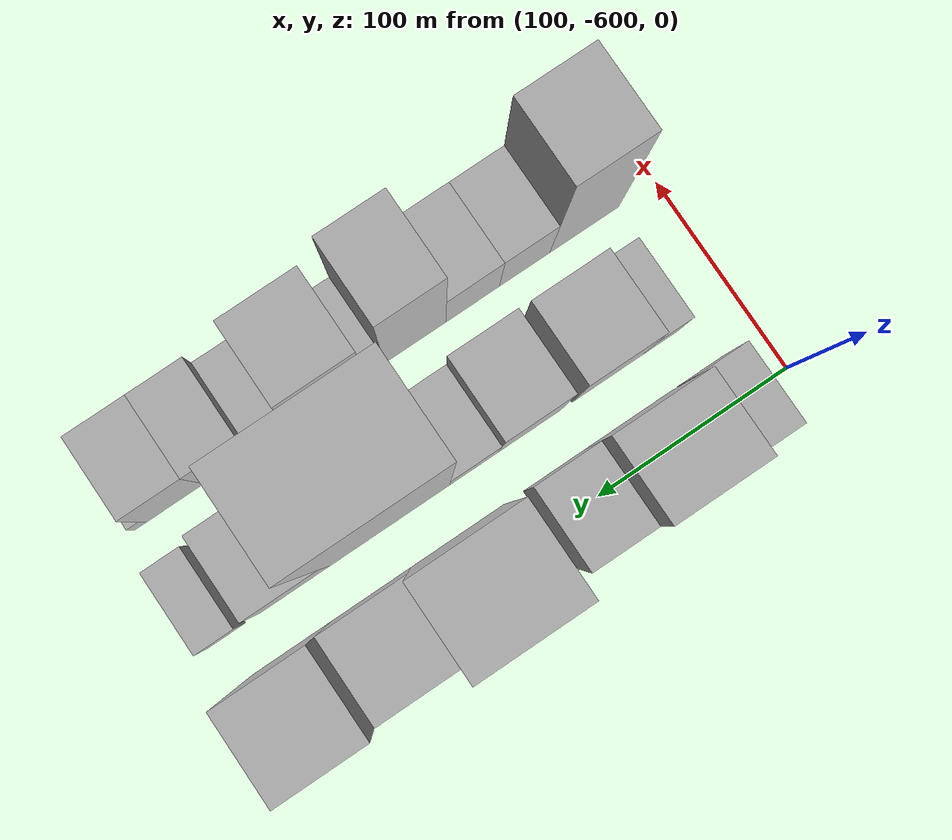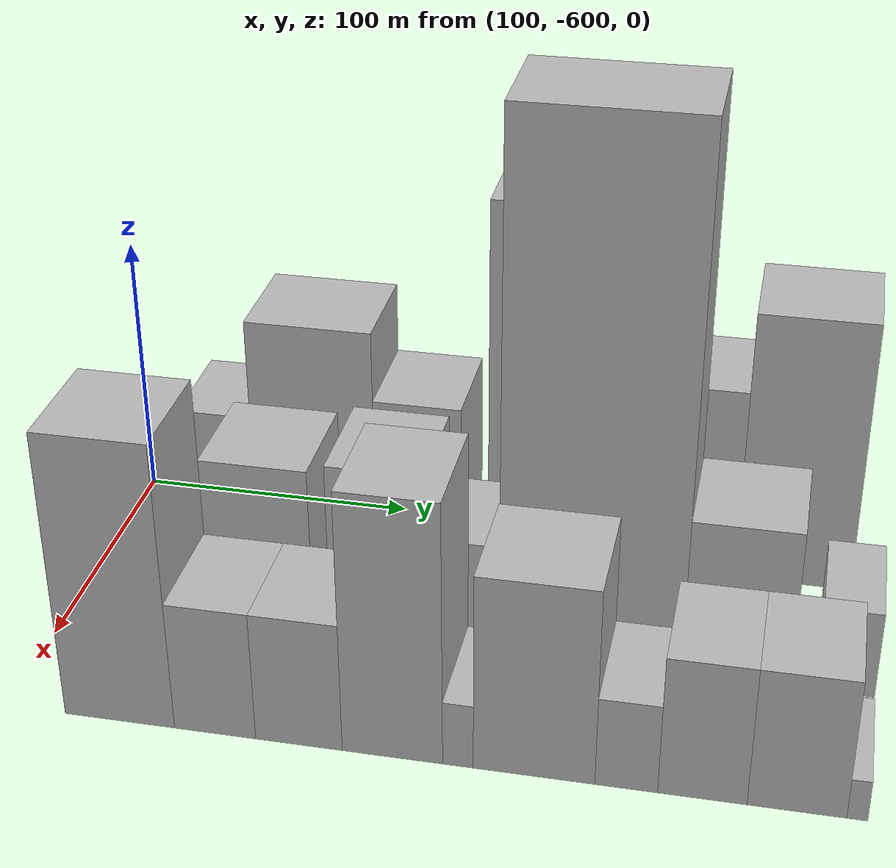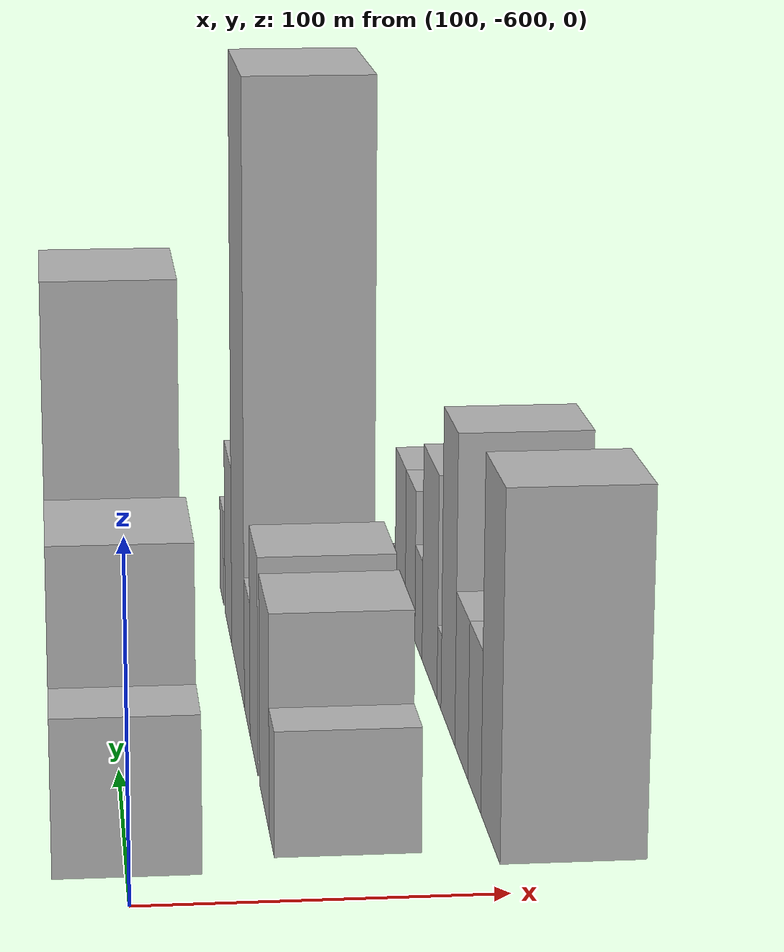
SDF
<sdf version="1.6">
 <world name="default">
  <model name="building_1">
   <static>1</static>
   <pose>100.0000 -567.7578 0 0.000000 0.000000 0.000000</pose>
   <link name="link">
    <pose>0 0 22.50 0 0 0</pose>
    <collision name="collision"><geometry><box><size>40.0000 24.4843 45.0000</size></box></geometry></collision>
    <visual name="visual">
     <cast_shadows>0</cast_shadows>
     <geometry><box><size>40.0000 24.4843 45.0000</size></box></geometry>
     <material>
      <script>
       <uri>model://HANNAS_wall/materials/scripts</uri>
       <uri>model://HANNAS_wall/materials/textures</uri>
       <name>vrc/HANNAS_wall</name>
      </script>
     </material>
    </visual>
   </link>
  </model>
  <model name="building_2">
   <static>1</static>
   <pose>100.0000 -529.5423 0 0.000000 0.000000 0.000000</pose>
   <link name="link">
    <pose>0 0 42.00 0 0 0</pose>
    <collision name="collision"><geometry><box><size>40.0000 45.9467 84.0000</size></box></geometry></collision>
    <visual name="visual">
     <cast_shadows>0</cast_shadows>
     <geometry><box><size>40.0000 45.9467 84.0000</size></box></geometry>
     <material>
      <script>
       <uri>model://HANNAS_wall/materials/scripts</uri>
       <uri>model://HANNAS_wall/materials/textures</uri>
       <name>vrc/HANNAS_wall</name>
      </script>
     </material>
    </visual>
   </link>
  </model>
  <model name="building_3">
   <static>1</static>
   <pose>100.0000 -490.5486 0 0.000000 0.000000 0.000000</pose>
   <link name="link">
    <pose>0 0 28.50 0 0 0</pose>
    <collision name="collision"><geometry><box><size>40.0000 32.0408 57.0000</size></box></geometry></collision>
    <visual name="visual">
     <cast_shadows>0</cast_shadows>
     <geometry><box><size>40.0000 32.0408 57.0000</size></box></geometry>
     <material>
      <script>
       <uri>model://HANNAS_wall/materials/scripts</uri>
       <uri>model://HANNAS_wall/materials/textures</uri>
       <name>vrc/HANNAS_wall</name>
      </script>
     </material>
    </visual>
   </link>
  </model>
  <model name="building_4">
   <static>1</static>
   <pose>100.0000 -440.3188 0 0.000000 0.000000 0.000000</pose>
   <link name="link">
    <pose>0 0 69.00 0 0 0</pose>
    <collision name="collision"><geometry><box><size>40.0000 48.4188 138.0000</size></box></geometry></collision>
    <visual name="visual">
     <cast_shadows>0</cast_shadows>
     <geometry><box><size>40.0000 48.4188 138.0000</size></box></geometry>
     <material>
      <script>
       <uri>model://HANNAS_wall/materials/scripts</uri>
       <uri>model://HANNAS_wall/materials/textures</uri>
       <name>vrc/HANNAS_wall</name>
      </script>
     </material>
    </visual>
   </link>
  </model>
  <model name="building_5">
   <static>1</static>
   <pose>100.0000 -395.4479 0 0.000000 0.000000 0.000000</pose>
   <link name="link">
    <pose>0 0 37.50 0 0 0</pose>
    <collision name="collision"><geometry><box><size>40.0000 41.3229 75.0000</size></box></geometry></collision>
    <visual name="visual">
     <cast_shadows>0</cast_shadows>
     <geometry><box><size>40.0000 41.3229 75.0000</size></box></geometry>
     <material>
      <script>
       <uri>model://HANNAS_wall/materials/scripts</uri>
       <uri>model://HANNAS_wall/materials/textures</uri>
       <name>vrc/HANNAS_wall</name>
      </script>
     </material>
    </visual>
   </link>
  </model>
  <model name="building_6">
   <static>1</static>
   <pose>100.0000 -354.4409 0 0.000000 0.000000 0.000000</pose>
   <link name="link">
    <pose>0 0 52.50 0 0 0</pose>
    <collision name="collision"><geometry><box><size>40.0000 40.6911 105.0000</size></box></geometry></collision>
    <visual name="visual">
     <cast_shadows>0</cast_shadows>
     <geometry><box><size>40.0000 40.6911 105.0000</size></box></geometry>
     <material>
      <script>
       <uri>model://HANNAS_wall/materials/scripts</uri>
       <uri>model://HANNAS_wall/materials/textures</uri>
       <name>vrc/HANNAS_wall</name>
      </script>
     </material>
    </visual>
   </link>
  </model>
  <model name="building_33">
   <static>1</static>
   <pose>160.0000 -560.4927 0 0.000000 0.000000 0.000000</pose>
   <link name="link">
    <pose>0 0 18.00 0 0 0</pose>
    <collision name="collision"><geometry><box><size>40.0000 19.0145 36.0000</size></box></geometry></collision>
    <visual name="visual">
     <cast_shadows>0</cast_shadows>
     <geometry><box><size>40.0000 19.0145 36.0000</size></box></geometry>
     <material>
      <script>
       <uri>model://HANNAS_wall/materials/scripts</uri>
       <uri>model://HANNAS_wall/materials/textures</uri>
       <name>vrc/HANNAS_wall</name>
      </script>
     </material>
    </visual>
   </link>
  </model>
  <model name="building_34">
   <static>1</static>
   <pose>160.0000 -532.4048 0 0.000000 0.000000 0.000000</pose>
   <link name="link">
    <pose>0 0 31.50 0 0 0</pose>
    <collision name="collision"><geometry><box><size>40.0000 37.1614 63.0000</size></box></geometry></collision>
    <visual name="visual">
     <cast_shadows>0</cast_shadows>
     <geometry><box><size>40.0000 37.1614 63.0000</size></box></geometry>
     <material>
      <script>
       <uri>model://HANNAS_wall/materials/scripts</uri>
       <uri>model://HANNAS_wall/materials/textures</uri>
       <name>vrc/HANNAS_wall</name>
      </script>
     </material>
    </visual>
   </link>
  </model>
  <model name="building_35">
   <static>1</static>
   <pose>160.0000 -491.1633 0 0.000000 0.000000 0.000000</pose>
   <link name="link">
    <pose>0 0 33.00 0 0 0</pose>
    <collision name="collision"><geometry><box><size>40.0000 33.3217 66.0000</size></box></geometry></collision>
    <visual name="visual">
     <cast_shadows>0</cast_shadows>
     <geometry><box><size>40.0000 33.3217 66.0000</size></box></geometry>
     <material>
      <script>
       <uri>model://HANNAS_wall/materials/scripts</uri>
       <uri>model://HANNAS_wall/materials/textures</uri>
       <name>vrc/HANNAS_wall</name>
      </script>
     </material>
    </visual>
   </link>
  </model>
  <model name="building_36">
   <static>1</static>
   <pose>160.0000 -461.9633 0 0.000000 0.000000 0.000000</pose>
   <link name="link">
    <pose>0 0 21.00 0 0 0</pose>
    <collision name="collision"><geometry><box><size>40.0000 25.0782 42.0000</size></box></geometry></collision>
    <visual name="visual">
     <cast_shadows>0</cast_shadows>
     <geometry><box><size>40.0000 25.0782 42.0000</size></box></geometry>
     <material>
      <script>
       <uri>model://HANNAS_wall/materials/scripts</uri>
       <uri>model://HANNAS_wall/materials/textures</uri>
       <name>vrc/HANNAS_wall</name>
      </script>
     </material>
    </visual>
   </link>
  </model>
  <model name="building_37">
   <static>1</static>
   <pose>160.0000 -418.6511 0 0.000000 0.000000 0.000000</pose>
   <link name="link">
    <pose>0 0 97.50 0 0 0</pose>
    <collision name="collision"><geometry><box><size>40.0000 61.5463 195.0000</size></box></geometry></collision>
    <visual name="visual">
     <cast_shadows>0</cast_shadows>
     <geometry><box><size>40.0000 61.5463 195.0000</size></box></geometry>
     <material>
      <script>
       <uri>model://HANNAS_wall/materials/scripts</uri>
       <uri>model://HANNAS_wall/materials/textures</uri>
       <name>vrc/HANNAS_wall</name>
      </script>
     </material>
    </visual>
   </link>
  </model>
  <model name="building_38">
   <static>1</static>
   <pose>160.0000 -369.9380 0 0.000000 0.000000 0.000000</pose>
   <link name="link">
    <pose>0 0 30.00 0 0 0</pose>
    <collision name="collision"><geometry><box><size>40.0000 35.8798 60.0000</size></box></geometry></collision>
    <visual name="visual">
     <cast_shadows>0</cast_shadows>
     <geometry><box><size>40.0000 35.8798 60.0000</size></box></geometry>
     <material>
      <script>
       <uri>model://HANNAS_wall/materials/scripts</uri>
       <uri>model://HANNAS_wall/materials/textures</uri>
       <name>vrc/HANNAS_wall</name>
      </script>
     </material>
    </visual>
   </link>
  </model>
  <model name="building_39">
   <static>1</static>
   <pose>160.0000 -334.4406 0 0.000000 0.000000 0.000000</pose>
   <link name="link">
    <pose>0 0 16.50 0 0 0</pose>
    <collision name="collision"><geometry><box><size>40.0000 19.1148 33.0000</size></box></geometry></collision>
    <visual name="visual">
     <cast_shadows>0</cast_shadows>
     <geometry><box><size>40.0000 19.1148 33.0000</size></box></geometry>
     <material>
      <script>
       <uri>model://HANNAS_wall/materials/scripts</uri>
       <uri>model://HANNAS_wall/materials/textures</uri>
       <name>vrc/HANNAS_wall</name>
      </script>
     </material>
    </visual>
   </link>
  </model>
  <model name="building_61">
   <static>1</static>
   <pose>220.0000 -561.5580 0 0.000000 0.000000 0.000000</pose>
   <link name="link">
    <pose>0 0 52.50 0 0 0</pose>
    <collision name="collision"><geometry><box><size>40.0000 36.8841 105.0000</size></box></geometry></collision>
    <visual name="visual">
     <cast_shadows>0</cast_shadows>
     <geometry><box><size>40.0000 36.8841 105.0000</size></box></geometry>
     <material>
      <script>
       <uri>model://HANNAS_wall/materials/scripts</uri>
       <uri>model://HANNAS_wall/materials/textures</uri>
       <name>vrc/HANNAS_wall</name>
      </script>
     </material>
    </visual>
   </link>
  </model>
  <model name="building_62">
   <static>1</static>
   <pose>220.0000 -529.6934 0 0.000000 0.000000 0.000000</pose>
   <link name="link">
    <pose>0 0 24.00 0 0 0</pose>
    <collision name="collision"><geometry><box><size>40.0000 26.8450 48.0000</size></box></geometry></collision>
    <visual name="visual">
     <cast_shadows>0</cast_shadows>
     <geometry><box><size>40.0000 26.8450 48.0000</size></box></geometry>
     <material>
      <script>
       <uri>model://HANNAS_wall/materials/scripts</uri>
       <uri>model://HANNAS_wall/materials/textures</uri>
       <name>vrc/HANNAS_wall</name>
      </script>
     </material>
    </visual>
   </link>
  </model>
  <model name="building_63">
   <static>1</static>
   <pose>220.0000 -502.1385 0 0.000000 0.000000 0.000000</pose>
   <link name="link">
    <pose>0 0 24.00 0 0 0</pose>
    <collision name="collision"><geometry><box><size>40.0000 28.2648 48.0000</size></box></geometry></collision>
    <visual name="visual">
     <cast_shadows>0</cast_shadows>
     <geometry><box><size>40.0000 28.2648 48.0000</size></box></geometry>
     <material>
      <script>
       <uri>model://HANNAS_wall/materials/scripts</uri>
       <uri>model://HANNAS_wall/materials/textures</uri>
       <name>vrc/HANNAS_wall</name>
      </script>
     </material>
    </visual>
   </link>
  </model>
  <model name="building_64">
   <static>1</static>
   <pose>220.0000 -471.9221 0 0.000000 0.000000 0.000000</pose>
   <link name="link">
    <pose>0 0 48.00 0 0 0</pose>
    <collision name="collision"><geometry><box><size>40.0000 32.1681 96.0000</size></box></geometry></collision>
    <visual name="visual">
     <cast_shadows>0</cast_shadows>
     <geometry><box><size>40.0000 32.1681 96.0000</size></box></geometry>
     <material>
      <script>
       <uri>model://HANNAS_wall/materials/scripts</uri>
       <uri>model://HANNAS_wall/materials/textures</uri>
       <name>vrc/HANNAS_wall</name>
      </script>
     </material>
    </visual>
   </link>
  </model>
  <model name="building_65">
   <static>1</static>
   <pose>220.0000 -450.9935 0 0.000000 0.000000 0.000000</pose>
   <link name="link">
    <pose>0 0 12.00 0 0 0</pose>
    <collision name="collision"><geometry><box><size>40.0000 9.6890 24.0000</size></box></geometry></collision>
    <visual name="visual">
     <cast_shadows>0</cast_shadows>
     <geometry><box><size>40.0000 9.6890 24.0000</size></box></geometry>
     <material>
      <script>
       <uri>model://HANNAS_wall/materials/scripts</uri>
       <uri>model://HANNAS_wall/materials/textures</uri>
       <name>vrc/HANNAS_wall</name>
      </script>
     </material>
    </visual>
   </link>
  </model>
  <model name="building_66">
   <static>1</static>
   <pose>220.0000 -427.1798 0 0.000000 0.000000 0.000000</pose>
   <link name="link">
    <pose>0 0 36.00 0 0 0</pose>
    <collision name="collision"><geometry><box><size>40.0000 37.9386 72.0000</size></box></geometry></collision>
    <visual name="visual">
     <cast_shadows>0</cast_shadows>
     <geometry><box><size>40.0000 37.9386 72.0000</size></box></geometry>
     <material>
      <script>
       <uri>model://HANNAS_wall/materials/scripts</uri>
       <uri>model://HANNAS_wall/materials/textures</uri>
       <name>vrc/HANNAS_wall</name>
      </script>
     </material>
    </visual>
   </link>
  </model>
  <model name="building_67">
   <static>1</static>
   <pose>220.0000 -398.5750 0 0.000000 0.000000 0.000000</pose>
   <link name="link">
    <pose>0 0 16.50 0 0 0</pose>
    <collision name="collision"><geometry><box><size>40.0000 19.2710 33.0000</size></box></geometry></collision>
    <visual name="visual">
     <cast_shadows>0</cast_shadows>
     <geometry><box><size>40.0000 19.2710 33.0000</size></box></geometry>
     <material>
      <script>
       <uri>model://HANNAS_wall/materials/scripts</uri>
       <uri>model://HANNAS_wall/materials/textures</uri>
       <name>vrc/HANNAS_wall</name>
      </script>
     </material>
    </visual>
   </link>
  </model>
  <model name="building_68">
   <static>1</static>
   <pose>220.0000 -375.4050 0 0.000000 0.000000 0.000000</pose>
   <link name="link">
    <pose>0 0 25.50 0 0 0</pose>
    <collision name="collision"><geometry><box><size>40.0000 27.0689 51.0000</size></box></geometry></collision>
    <visual name="visual">
     <cast_shadows>0</cast_shadows>
     <geometry><box><size>40.0000 27.0689 51.0000</size></box></geometry>
     <material>
      <script>
       <uri>model://HANNAS_wall/materials/scripts</uri>
       <uri>model://HANNAS_wall/materials/textures</uri>
       <name>vrc/HANNAS_wall</name>
      </script>
     </material>
    </visual>
   </link>
  </model>
  <model name="building_69">
   <static>1</static>
   <pose>220.0000 -347.0296 0 0.000000 0.000000 0.000000</pose>
   <link name="link">
    <pose>0 0 25.50 0 0 0</pose>
    <collision name="collision"><geometry><box><size>40.0000 29.6819 51.0000</size></box></geometry></collision>
    <visual name="visual">
     <cast_shadows>0</cast_shadows>
     <geometry><box><size>40.0000 29.6819 51.0000</size></box></geometry>
     <material>
      <script>
       <uri>model://HANNAS_wall/materials/scripts</uri>
       <uri>model://HANNAS_wall/materials/textures</uri>
       <name>vrc/HANNAS_wall</name>
      </script>
     </material>
    </visual>
   </link>
  </model>
  <model name="building_70">
   <static>1</static>
   <pose>220.0000 -329.1133 0 0.000000 0.000000 0.000000</pose>
   <link name="link">
    <pose>0 0 7.50 0 0 0</pose>
    <collision name="collision"><geometry><box><size>40.0000 6.1507 15.0000</size></box></geometry></collision>
    <visual name="visual">
     <cast_shadows>0</cast_shadows>
     <geometry><box><size>40.0000 6.1507 15.0000</size></box></geometry>
     <material>
      <script>
       <uri>model://HANNAS_wall/materials/scripts</uri>
       <uri>model://HANNAS_wall/materials/textures</uri>
       <name>vrc/HANNAS_wall</name>
      </script>
     </material>
    </visual>
   </link>
  </model>
 </world>
</sdf>
